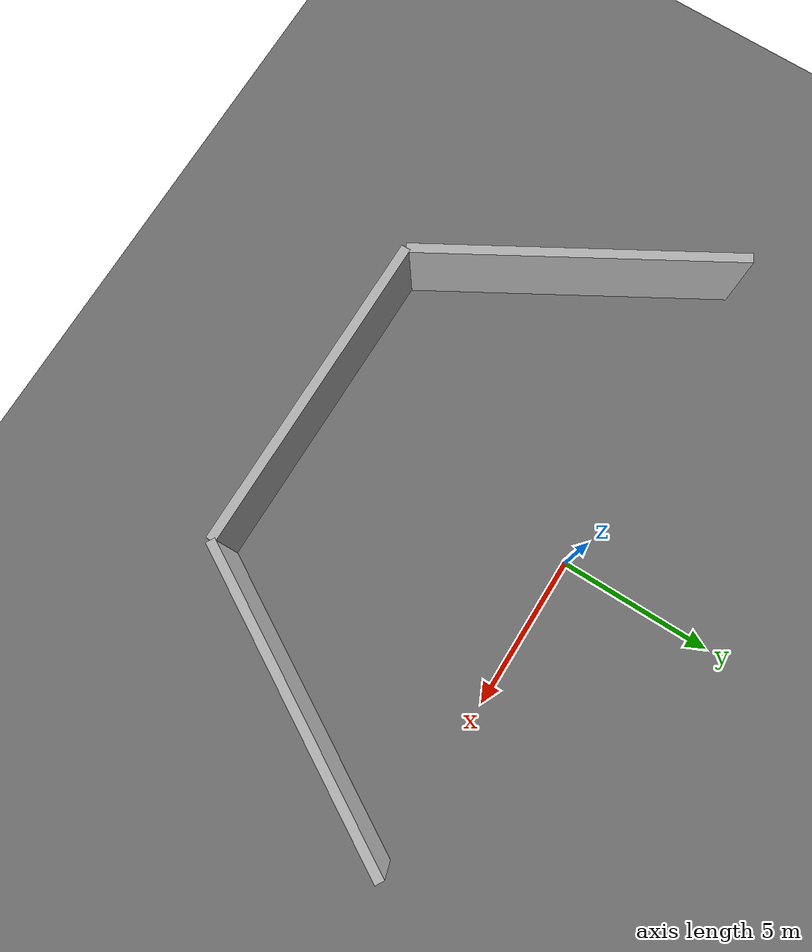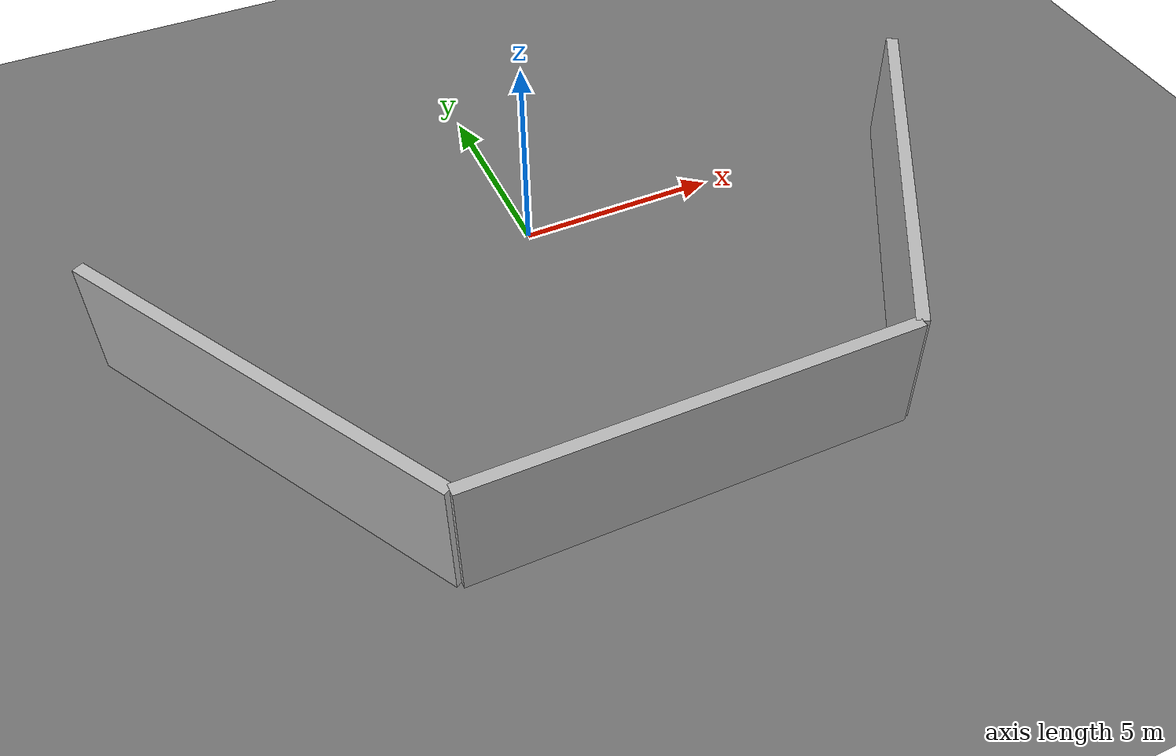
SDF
<sdf version="1.9">
 <world name="empty_world">
  <model name="ground_plane">
   <static>true</static>
   <link name="link">
    <collision name="collision">
     <geometry><plane><normal>0 0 1</normal><size>100 100</size></plane></geometry>
    </collision>
    <visual name="visual">
     <geometry><plane><normal>0 0 1</normal><size>100 100</size></plane></geometry>
     <material>
      <lighting>true</lighting>
      <ambient>0.45 0.45 0.45 1</ambient>
      <diffuse>0.45 0.45 0.45 1</diffuse>
      <specular>0.0 0.0 0.0 1</specular>
     </material>
    </visual>
   </link>
  </model>
  <model name="wall_2">
   <static>true</static>
   <pose>-7.79 -4.5 1.5 0 0 2.0944</pose>
   <link name="link">
    <collision name="c"><geometry><box><size>10.39 0.3 3.0</size></box></geometry></collision>
    <visual name="v"><geometry><box><size>10.39 0.3 3.0</size></box></geometry></visual>
   </link>
  </model>
  <model name="wall_3">
   <static>true</static>
   <pose>0 -9.0 1.5 0 0 3.1416</pose>
   <link name="link">
    <collision name="c"><geometry><box><size>10.39 0.3 3.0</size></box></geometry></collision>
    <visual name="v"><geometry><box><size>10.39 0.3 3.0</size></box></geometry></visual>
   </link>
  </model>
  <model name="wall_4">
   <static>true</static>
   <pose>7.79 -4.5 1.5 0 0 -2.0944</pose>
   <link name="link">
    <collision name="c"><geometry><box><size>10.39 0.3 3.0</size></box></geometry></collision>
    <visual name="v"><geometry><box><size>10.39 0.3 3.0</size></box></geometry></visual>
   </link>
  </model>
 </world>
</sdf>
